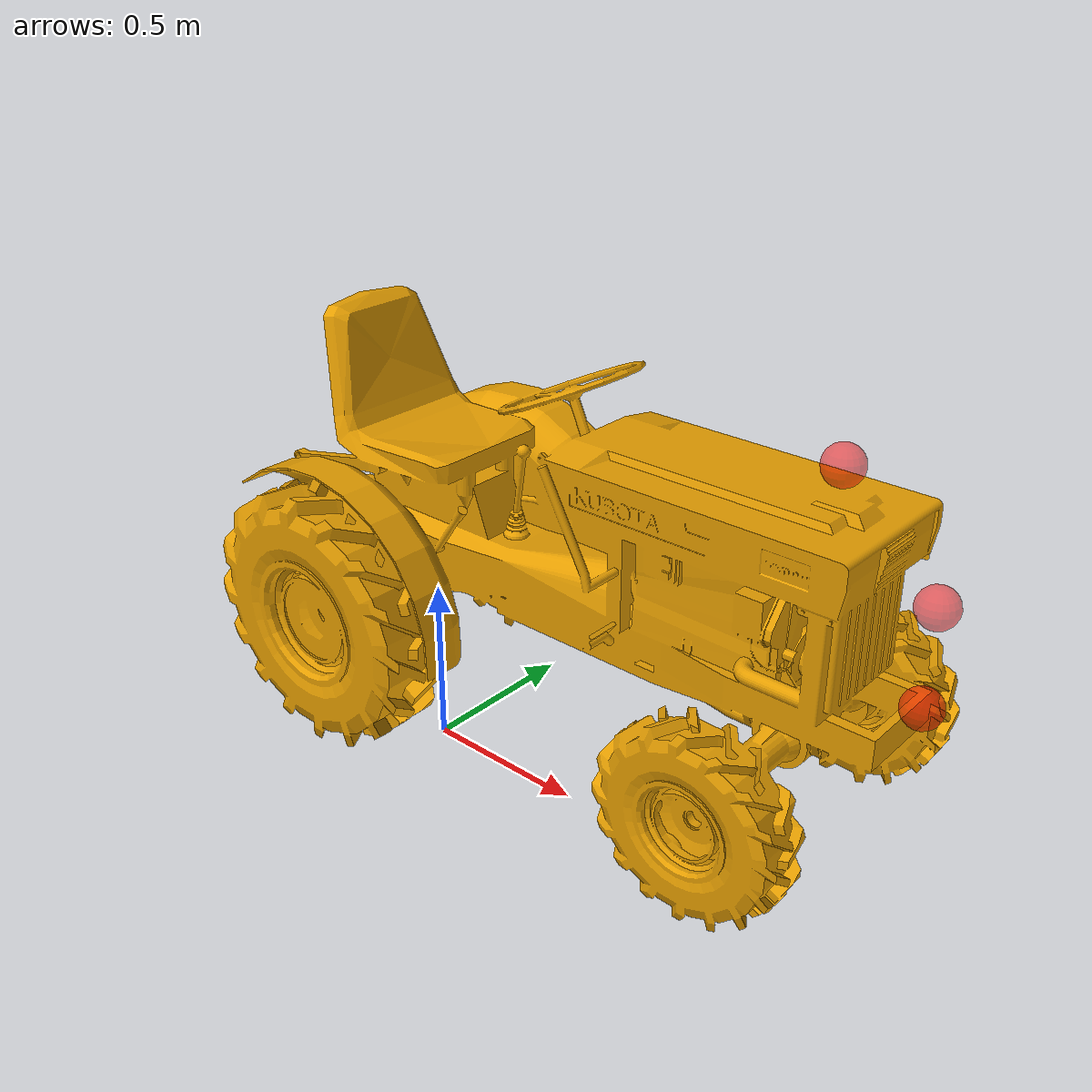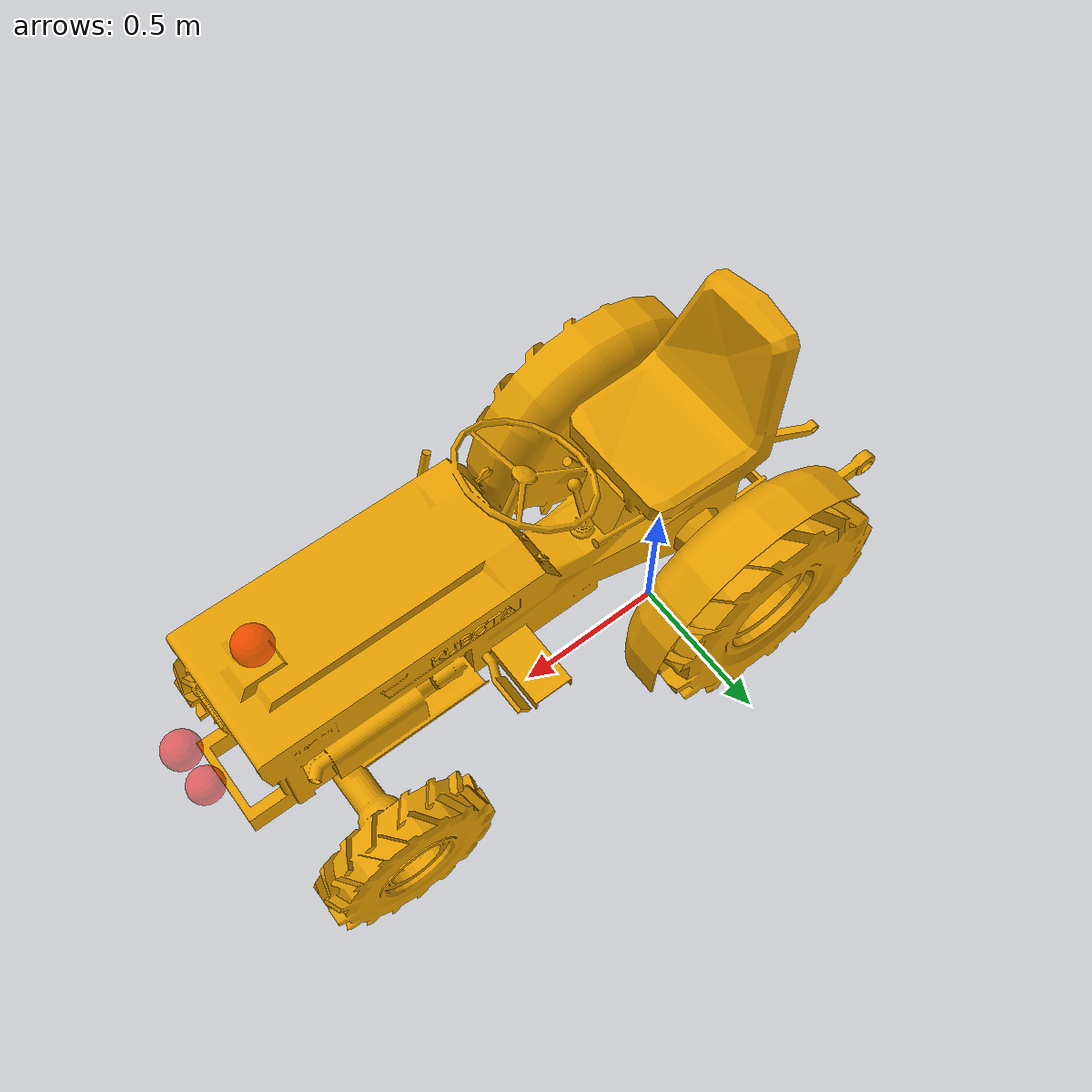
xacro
<?xml version="1.0"?>
<robot name="lawn_tractor" xmlns:xacro='http://www.ros.org/wiki/xacro'>

<!-- TODO:  collision link element to be added -->
<!-- TODO:  inertial link element to be added -->

<!-- define base link, center of rear axle for an ackermann vehicle -->
  <link name="base_link">
    <visual>
      <origin xyz='0.55 0 0' rpy='0 0 ${pi}' />
      <geometry>
        <mesh filename="package://lawn_tractor_sim/meshes/lawn_tractor.dae" scale='1 1 1'/>
      </geometry>
    </visual>
  </link>

<!-- define base footprint (virtual link) -->
  <link name="base_footprint" />

  <!-- define gps link -->
  <link name="gps">
    <visual>
      <origin xyz='0 0 0' rpy='0 0 0' />
      <geometry>
        <sphere radius='0.05' />
      </geometry>
      <material name='red'>
        <color rgba='1 0 0 0.5' />
      </material>
    </visual>
  </link>

  <!-- define camera link -->
  <link name="camera">
    <visual>
      <origin xyz='0 0 0' rpy='0 0 0' />
      <geometry>
        <sphere radius='0.05' />
      </geometry>
      <material name='red'>
        <color rgba='1 0 0 0.5' />
      </material>
    </visual>
  </link>

  <!-- define ultrasonic sensor link -->
  <link name="base_laser_link">
    <visual>
      <origin xyz='0 0 0' rpy='0 0 0' />
      <geometry>
        <sphere radius='0.05' />
      </geometry>
      <material name='red'>
        <color rgba='1 0 0 0.5' />
      </material>
    </visual>
  </link>

    <!-- xacro macro definition -->
    <!-- default inertia -->
    <xacro:macro name='default_inertia' params='mass x:=0 y:=0 z:=0'>
        <inertial>
            <origin xyz='${x} ${y} ${z}' />
            <mass value='${mass}' />
            <inertia ixx="1.0" ixy="0.0" ixz="0.0" iyy="1.0" iyz="0.0" izz="1.0" />
        </inertial>
    </xacro:macro>

<!-- define base footprint joint -->
  <joint name="base_footprint_joint" type="fixed">
    <parent link="base_footprint"/>
    <child link="base_link"/>
    <origin xyz="0 0 0.25" rpy="0 0 0" />
  </joint>

<!-- define gps joint -->
  <joint name="gps_joint" type="fixed">
    <parent link="base_link"/>
    <child link="gps"/>
    <origin xyz="1.25 0 1.0" rpy="0 0 0" />
  </joint>

<!-- define camera joint -->
  <joint name="camera_joint" type="fixed">
    <parent link="base_link"/>
    <child link="camera"/>
    <origin xyz="1.5 0 0.5" rpy="${-pi/2} 0 ${-pi/2}" />
  </joint>

  <!-- define ultrasonic sensor joint -->
  <joint name="range_joint" type="fixed">
    <parent link="base_link"/>
    <child link="base_laser_link"/>
    <origin xyz="1.5 0 0.75" rpy="0 0 0" />
  </joint>
</robot>
